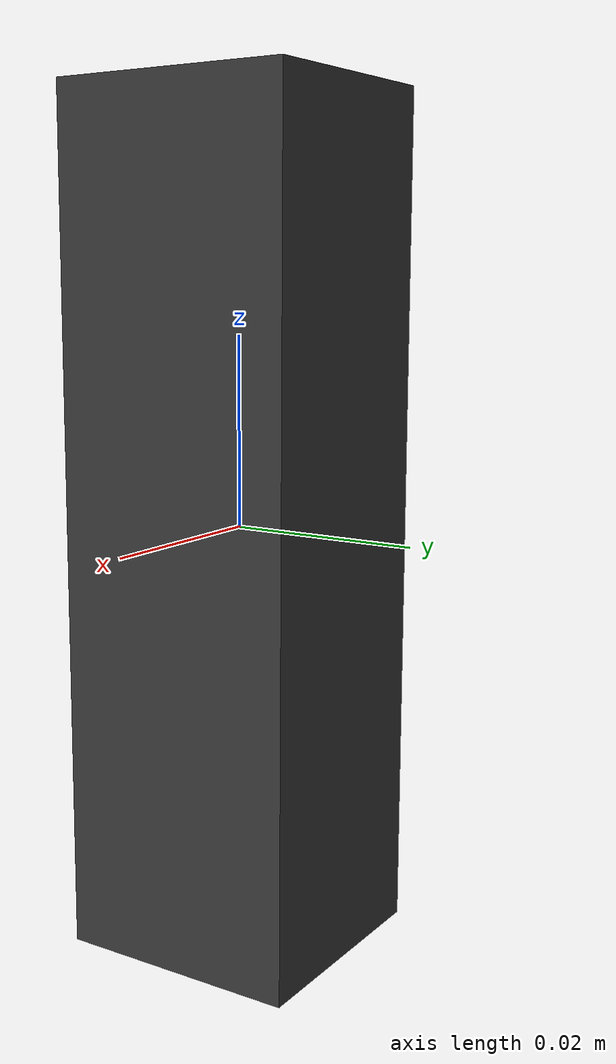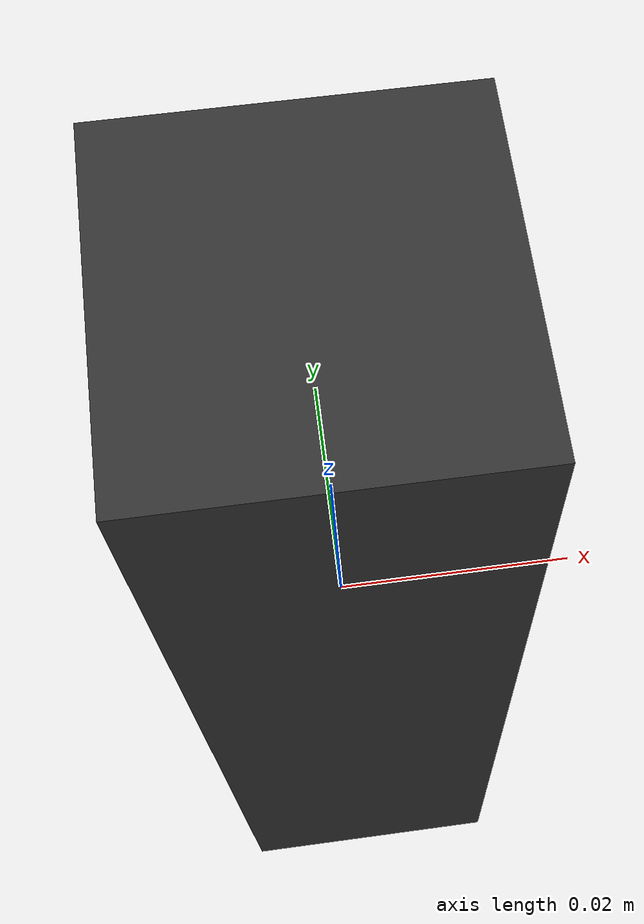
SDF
<?xml version="1.0"?>
<sdf version="1.7">
  <model name="mock_camera">
    <!-- Make the camera static so it doesn't fall due to gravity -->
    <static>true</static>

    <link name="camera_link">
      <!-- Position above the ground -->
      <pose>0 0 0 0 1.570796 0</pose> <!-- 90-degree rotation to face downward -->

      <!-- Visual (appearance) -->
      <visual name="camera_visual">
        <geometry>
          <box>
            <size>0.09 0.026 0.025</size> <!-- Approximate D435 dimensions -->
          </box>
        </geometry>
        <material>
          <ambient>0.1 0.1 0.1 1</ambient>
          <diffuse>0.2 0.2 0.2 1</diffuse>
          <specular>0.1 0.1 0.1 1</specular>
          <emissive>0 0 0 1</emissive>
        </material>
      </visual>

      <!-- Collision (for physics) -->
      <collision name="camera_collision">
        <geometry>
          <box>
            <size>0.09 0.026 0.025</size> <!-- Same size as visual -->
          </box>
        </geometry>
      </collision>

      <!-- Inertial (for physics) -->
      <inertial>
        <mass>0.072</mass> <!-- RealSense D435 weight is ~72g -->
        <inertia>
          <ixx>0.0002</ixx>
          <iyy>0.0002</iyy>
          <izz>0.0002</izz>
          <ixy>0.0</ixy>
          <ixz>0.0</ixz>
          <iyz>0.0</iyz>
        </inertia>
      </inertial>

      <!-- Depth Camera Sensor -->
      <sensor name="camera_sensor" type="depth">
        <pose>0 0 0 0 0 0</pose>
        <update_rate>30</update_rate>
        <camera>
          <horizontal_fov>1.50098</horizontal_fov> <!-- 86 degrees in radians -->
          <image>
            <width>1280</width>
            <height>720</height>
            <format>R8G8B8</format>
          </image>
          <clip>
            <near>0.105</near> <!-- RealSense D435 minimum depth range -->
            <far>10.0</far> <!-- RealSense D435 max depth range -->
          </clip>
          <depth_camera>
            <output>true</output>
          </depth_camera>
        </camera>
        <plugin name="camera_plugin" filename="libgazebo_ros_camera.so">
          <always_on>true</always_on>
          <update_rate>30.0</update_rate>
          <camera_name>d435_mock</camera_name>
          <image_topic_name>/d435_mock/color/image_raw</image_topic_name>
          <camera_info_topic_name>/d435_mock/camera_info</camera_info_topic_name>
          <frame_name>camera_link</frame_name>
        </plugin>
      </sensor>

      <!-- Infrared Left Camera Sensor -->
      <sensor name="infra1_sensor" type="camera">
        <pose>0 0 0 0 0 0</pose>
        <update_rate>30</update_rate>
        <camera>
          <horizontal_fov>1.50098</horizontal_fov>
          <image>
            <width>1280</width>
            <height>720</height>
            <format>R8G8B8</format>
          </image>
          <clip>
            <near>0.105</near>
            <far>10.0</far>
          </clip>
        </camera>
        <plugin name="infra1_plugin" filename="libgazebo_ros_camera.so">
          <always_on>true</always_on>
          <update_rate>30.0</update_rate>
          <camera_name>d435_mock_infra1</camera_name>
          <image_topic_name>/d435_mock/infra1/image_raw</image_topic_name>
          <camera_info_topic_name>/d435_mock/infra1/camera_info</camera_info_topic_name>
          <frame_name>camera_link</frame_name>
        </plugin>
      </sensor>

      <!-- Infrared Right Camera Sensor -->
      <sensor name="infra2_sensor" type="camera">
        <pose>0 0 0 0 0 0</pose>
        <update_rate>30</update_rate>
        <camera>
          <horizontal_fov>1.50098</horizontal_fov>
          <image>
            <width>1280</width>
            <height>720</height>
            <format>R8G8B8</format>
          </image>
          <clip>
            <near>0.105</near>
            <far>10.0</far>
          </clip>
        </camera>
        <plugin name="infra2_plugin" filename="libgazebo_ros_camera.so">
          <always_on>true</always_on>
          <update_rate>30.0</update_rate>
          <camera_name>d435_mock_infra2</camera_name>
          <image_topic_name>/d435_mock/infra2/image_raw</image_topic_name>
          <camera_info_topic_name>/d435_mock/infra2/camera_info</camera_info_topic_name>
          <frame_name>camera_link</frame_name>
        </plugin>
      </sensor>
    </link>
  </model>
</sdf>
